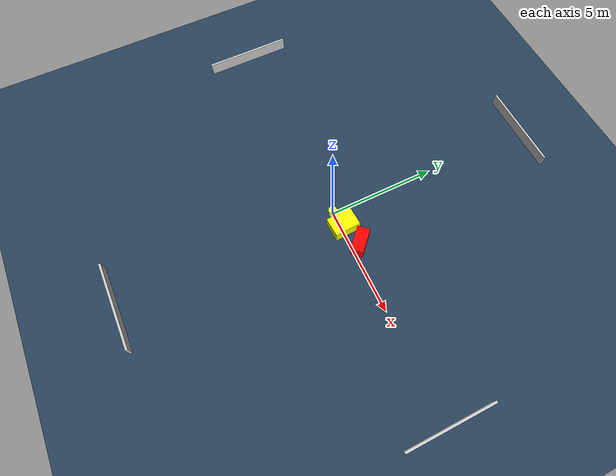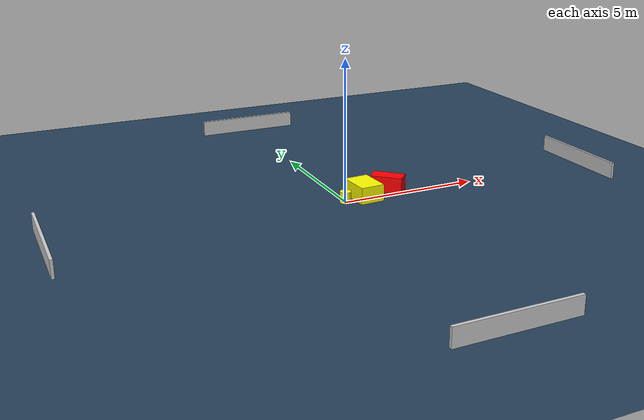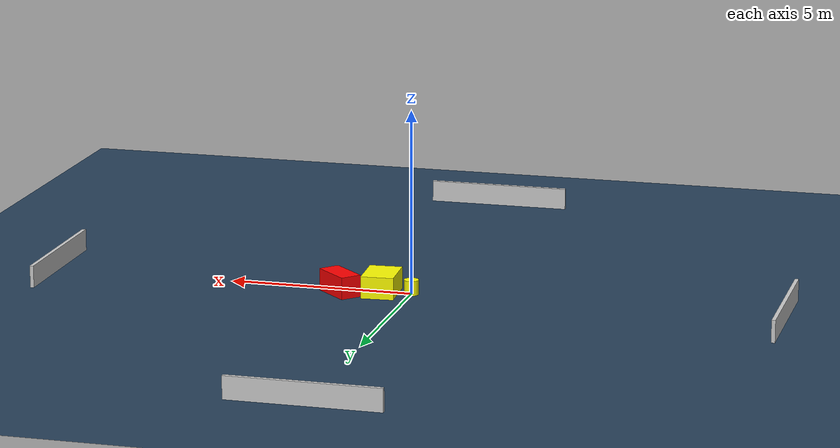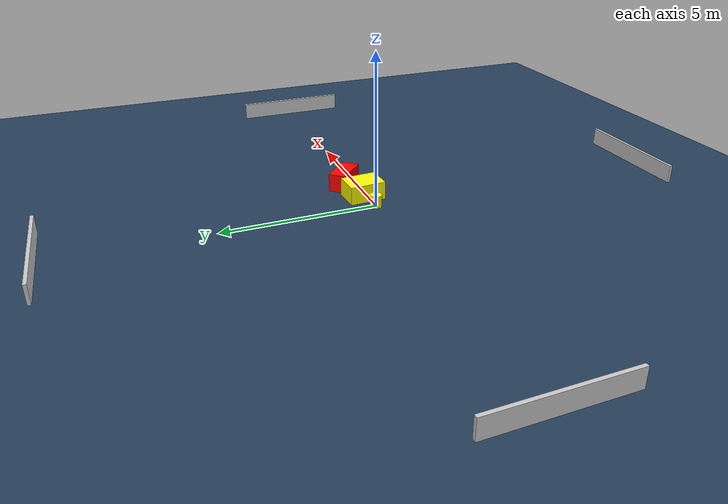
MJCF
<?xml version="1.0" ?>
<mujoco model="generated_environment">
  <option timestep="0.01" integrator="RK4" cone="elliptic"/>
  <default>
    <geom density="1"/>
  </default>
  <asset>
    <texture builtin="gradient" height="3072" name="skybox" rgb1="0.3 0.5 0.7" rgb2="0 0 0" type="skybox" width="512"/>
    <texture builtin="checker" height="300" name="groundplane" rgb1="0.2 0.3 0.4" rgb2="0.1 0.2 0.3" type="2d" width="300"/>
    <material name="groundplane" reflectance="0.2" texrepeat="5 5" texture="groundplane"/>
  </asset>
  <worldbody>
    <light dir="0 0 -1" directional="true" pos="0 0 1.5"/>
    <geom condim="3" friction="0.5 0.005 0.001" material="groundplane" name="floor" pos="0 0 0" size="0 0 0.05" type="plane"/>
    <body name="walls">
      <geom name="wall_1" condim="4" pos="-10.0 0.0 0.3" rgba="0.800000011920929 0.800000011920929 0.800000011920929 1.0" size="0.05 2.0 0.3" type="box"/>
      <geom name="wall_2" condim="4" pos="10.0 0.0 0.3" rgba="0.800000011920929 0.800000011920929 0.800000011920929 1.0" size="0.05 2.0 0.3" type="box"/>
      <geom name="wall_3" condim="4" pos="0.0 -10.0 0.3" rgba="0.800000011920929 0.800000011920929 0.800000011920929 1.0" size="2.0 0.05 0.3" type="box"/>
      <geom name="wall_4" condim="4" pos="0.0 10.0 0.3" rgba="0.800000011920929 0.800000011920929 0.800000011920929 1.0" size="2.0 0.05 0.3" type="box"/>
    </body>
    <body name="robot">
      <joint name="joint_x" type="slide" pos="0 0 0" axis="1 0 0"/>
      <joint name="joint_y" type="slide" pos="0 0 0" axis="0 1 0"/>
      <geom name="robot" type="cylinder" pos="0.0 0.0 0.2" size="0.2 0.2 0.0" mass="5.0" friction="1.0 0.005 0.0001" condim="4" rgba="1.0 1.0 0.0 1.0"/>
    </body>
    <body name="obstacle_1_movable">
      <geom name="obstacle_1_movable" condim="4" pos="0.7872391450939701 0.13405245986185568 0.3" euler="0 0 273.4889428960144" friction="0.0 0.005 0.001" rgba="1.0 1.0 0.0 1.0" size="0.5968032241768196 0.44074341164803776 0.3" type="box" mass="0.1"/>
      <joint type="free"/>
    </body>
    <body name="obstacle_2_static">
      <geom name="obstacle_2_static" condim="4" pos="1.8591837365133905 0.414538206497282 0.3" euler="0 0 136.99992132682135" friction="0.0 0.005 0.001" rgba="1.0 0.0 0.0 1.0" size="0.5743027952351201 0.2892808654138889 0.3" type="box"/>
    </body>
  </worldbody>
  <actuator>
    <motor name="actuator_x" joint="joint_x" gear="1" ctrlrange="-1 1"/>
    <motor name="actuator_y" joint="joint_y" gear="1" ctrlrange="-1 1"/>
  </actuator>
</mujoco>
